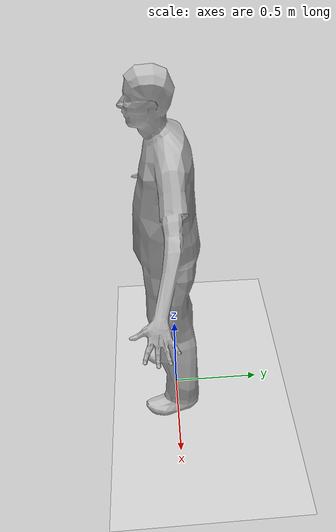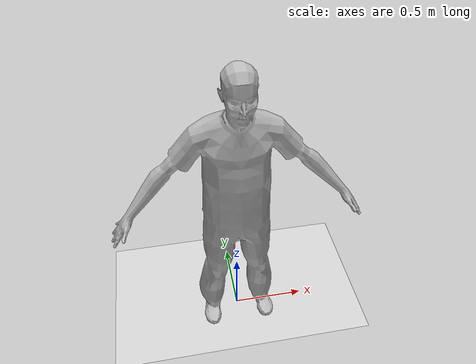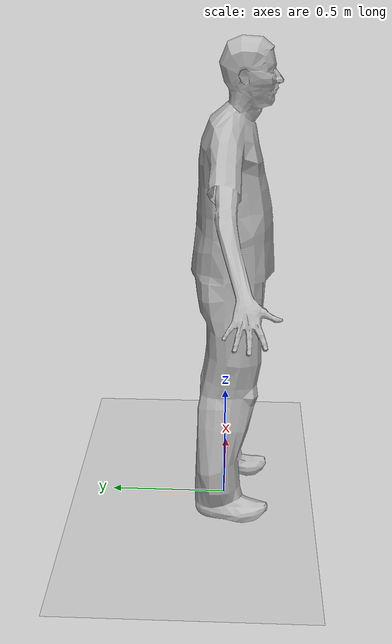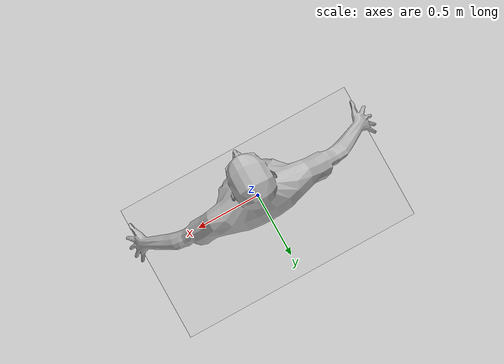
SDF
<?xml version="1.0"?>
<sdf version="1.4">
  <world name="default">
    <include>
      <uri>model://ground_plane</uri>
    </include>
    <include>
      <uri>model://sun</uri>
    </include>
    <model name="Patrik">
      <pose>0 0 0  0 0 0</pose>
      <static>true</static>
      <link name="body">
        <visual name="visual">
          <geometry>
            <mesh><uri>file://Patrik/Patrick.dae</uri></mesh>
          </geometry>
        </visual>
      </link>
    </model>
  </world>
</sdf>
